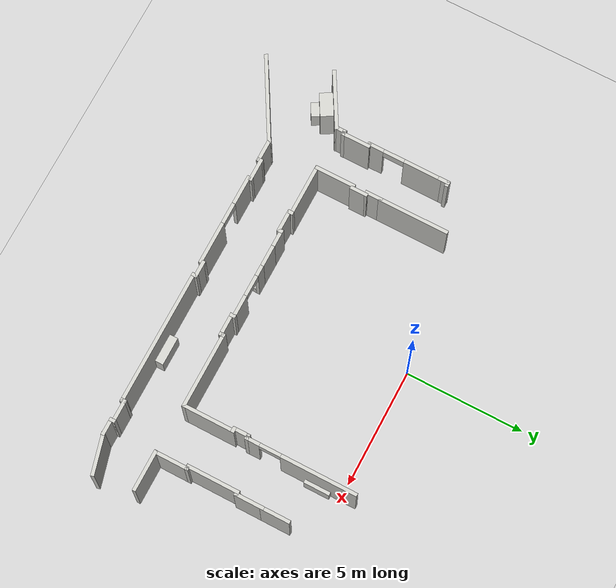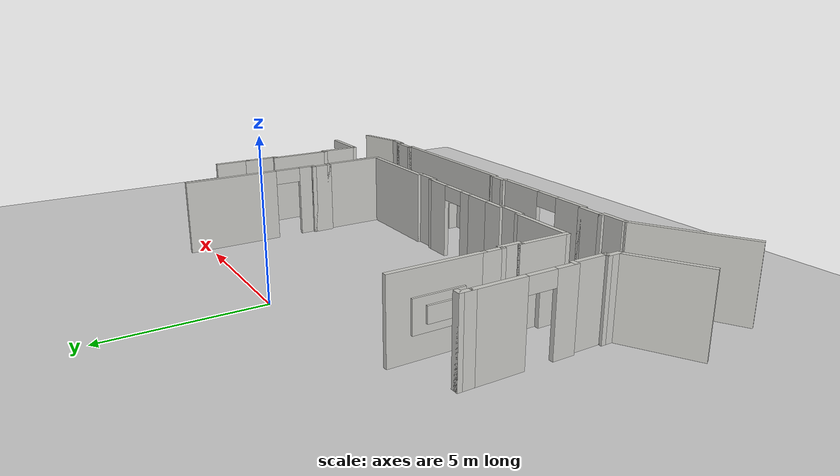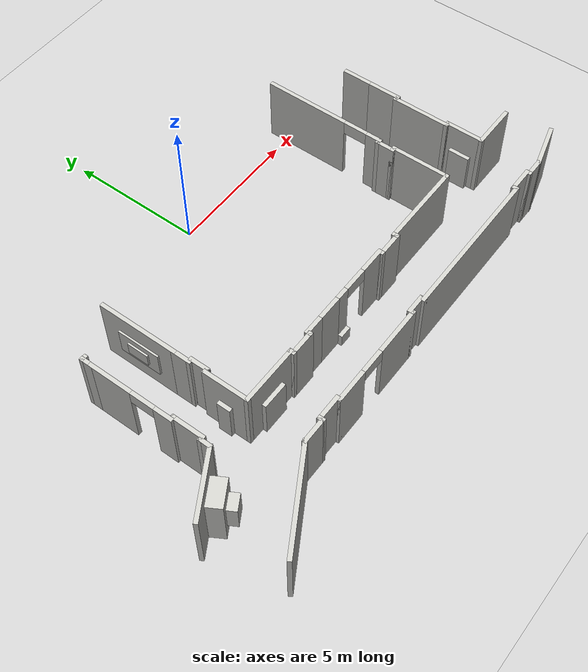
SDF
<sdf version="1.6">
 <world name="default">
  <model name="ground_plane">
   <static>1</static>
   <link name="link">
    <collision name="collision">
     <geometry><plane><normal>0 0 1</normal><size>100 100</size></plane></geometry>
     <surface><friction><ode><mu>100</mu><mu2>50</mu2></ode></friction></surface>
    </collision>
    <visual name="visual">
     <cast_shadows>0</cast_shadows>
     <geometry><plane><normal>0 0 1</normal><size>100 100</size></plane></geometry>
     <material>
      <script><uri>file://media/materials/scripts/gazebo.material</uri><name>Gazebo/Grey</name></script>
     </material>
    </visual>
   </link>
  </model>
  <model name="mcbryde5">
   <pose>0.000403 -0.034137 0 0 -0 0</pose>
   <link name="Wall_109">
    <collision name="Wall_109_Collision">
     <geometry><box><size>0.25 0.15 2.5</size></box></geometry>
     <pose>0 0 1.25 0 -0 0</pose>
    </collision>
    <visual name="Wall_109_Visual">
     <pose>0 0 1.25 0 -0 0</pose>
     <geometry><box><size>0.25 0.15 2.5</size></box></geometry>
     <material>
      <script><uri>file://media/materials/scripts/gazebo.material</uri><name>Gazebo/CeilingTiled</name></script>
      <ambient>1 1 1 1</ambient>
     </material>
    </visual>
    <pose>-6.89903 -1.86078 0 0 -0 3.14159</pose>
   </link>
   <link name="Wall_110">
    <collision name="Wall_110_Collision">
     <geometry><box><size>0.5 0.15 2.5</size></box></geometry>
     <pose>0 0 1.25 0 -0 0</pose>
    </collision>
    <visual name="Wall_110_Visual">
     <pose>0 0 1.25 0 -0 0</pose>
     <geometry><box><size>0.5 0.15 2.5</size></box></geometry>
     <material>
      <script><uri>file://media/materials/scripts/gazebo.material</uri><name>Gazebo/CeilingTiled</name></script>
      <ambient>1 1 1 1</ambient>
     </material>
    </visual>
    <pose>-6.94903 -2.03578 0 0 0 -1.5708</pose>
   </link>
   <link name="Wall_112">
    <pose>-6.94903 -3.76078 0 0 0 -1.5708</pose>
    <visual name="Wall_112_Visual_0">
     <pose>-0.803013 0 1.25 0 -0 0</pose>
     <geometry><box><size>1.64397 0.15 2.5</size></box></geometry>
     <material>
      <script><uri>file://media/materials/scripts/gazebo.material</uri><name>Gazebo/CeilingTiled</name></script>
      <ambient>1 1 1 1</ambient>
     </material>
    </visual>
    <collision name="Wall_112_Collision_0">
     <geometry><box><size>1.64397 0.15 2.5</size></box></geometry>
     <pose>-0.803013 0 1.25 0 -0 0</pose>
    </collision>
    <visual name="Wall_112_Visual_1">
     <pose>1.27199 0 1.25 0 -0 0</pose>
     <geometry><box><size>0.706025 0.15 2.5</size></box></geometry>
     <material>
      <script><uri>file://media/materials/scripts/gazebo.material</uri><name>Gazebo/CeilingTiled</name></script>
      <ambient>1 1 1 1</ambient>
     </material>
    </visual>
    <collision name="Wall_112_Collision_1">
     <geometry><box><size>0.706025 0.15 2.5</size></box></geometry>
     <pose>1.27199 0 1.25 0 -0 0</pose>
    </collision>
    <visual name="Wall_112_Visual_2">
     <pose>0.468975 0 2.25 0 -0 0</pose>
     <geometry><box><size>0.9 0.15 0.5</size></box></geometry>
     <material>
      <script><uri>file://media/materials/scripts/gazebo.material</uri><name>Gazebo/CeilingTiled</name></script>
      <ambient>1 1 1 1</ambient>
     </material>
    </visual>
    <collision name="Wall_112_Collision_2">
     <geometry><box><size>0.9 0.15 0.5</size></box></geometry>
     <pose>0.468975 0 2.25 0 -0 0</pose>
    </collision>
   </link>
   <link name="Wall_113">
    <collision name="Wall_113_Collision">
     <geometry><box><size>0.25 0.15 2.5</size></box></geometry>
     <pose>0 0 1.25 0 -0 0</pose>
    </collision>
    <visual name="Wall_113_Visual">
     <pose>0 0 1.25 0 -0 0</pose>
     <geometry><box><size>0.25 0.15 2.5</size></box></geometry>
     <material>
      <script><uri>file://media/materials/scripts/gazebo.material</uri><name>Gazebo/CeilingTiled</name></script>
      <ambient>1 1 1 1</ambient>
     </material>
    </visual>
    <pose>-6.89903 -5.31078 0 0 -0 0</pose>
   </link>
   <link name="Wall_114">
    <collision name="Wall_114_Collision">
     <geometry><box><size>1.25 0.15 2.5</size></box></geometry>
     <pose>0 0 1.25 0 -0 0</pose>
    </collision>
    <visual name="Wall_114_Visual">
     <pose>0 0 1.25 0 -0 0</pose>
     <geometry><box><size>1.25 0.15 2.5</size></box></geometry>
     <material>
      <script><uri>file://media/materials/scripts/gazebo.material</uri><name>Gazebo/CeilingTiled</name></script>
      <ambient>1 1 1 1</ambient>
     </material>
    </visual>
    <pose>-6.84903 -5.86078 0 0 0 -1.5708</pose>
   </link>
   <link name="Wall_115">
    <collision name="Wall_115_Collision">
     <geometry><box><size>0.25 0.15 2.5</size></box></geometry>
     <pose>0 0 1.25 0 -0 0</pose>
    </collision>
    <visual name="Wall_115_Visual">
     <pose>0 0 1.25 0 -0 0</pose>
     <geometry><box><size>0.25 0.15 2.5</size></box></geometry>
     <material>
      <script><uri>file://media/materials/scripts/gazebo.material</uri><name>Gazebo/CeilingTiled</name></script>
      <ambient>1 1 1 1</ambient>
     </material>
    </visual>
    <pose>-6.89903 -6.41078 0 0 -0 3.14159</pose>
   </link>
   <link name="Wall_116">
    <collision name="Wall_116_Collision">
     <geometry><box><size>0.5 0.15 2.5</size></box></geometry>
     <pose>0 0 1.25 0 -0 0</pose>
    </collision>
    <visual name="Wall_116_Visual">
     <pose>0 0 1.25 0 -0 0</pose>
     <geometry><box><size>0.5 0.15 2.5</size></box></geometry>
     <material>
      <script><uri>file://media/materials/scripts/gazebo.material</uri><name>Gazebo/CeilingTiled</name></script>
      <ambient>1 1 1 1</ambient>
     </material>
    </visual>
    <pose>-6.94903 -6.58578 0 0 0 -1.5708</pose>
   </link>
   <link name="Wall_117">
    <collision name="Wall_117_Collision_0">
     <geometry><box><size>2.5 0.15 2.5</size></box></geometry>
     <pose>0 0 1.25 0 -0 0</pose>
    </collision>
    <visual name="Wall_117_Visual_0">
     <pose>0 0 1.25 0 -0 0</pose>
     <geometry><box><size>2.5 0.15 2.5</size></box></geometry>
     <material>
      <script><uri>file://media/materials/scripts/gazebo.material</uri><name>Gazebo/CeilingTiled</name></script>
      <ambient>1 1 1 1</ambient>
     </material>
    </visual>
    <collision name="Wall_117_Collision_1">
     <geometry><box><size>1.0 0.55 2.0</size></box></geometry>
     <pose>0 0.35 1.0 0 -0 0</pose>
    </collision>
    <visual name="Wall_117_Visual_1">
     <pose>0 0.35 1.0 0 -0 0</pose>
     <geometry><box><size>1.0 0.55 2.0</size></box></geometry>
     <material>
      <script><uri>file://media/materials/scripts/gazebo.material</uri><name>Gazebo/CeilingTiled</name></script>
      <ambient>0.3 1 0.3 1</ambient>
     </material>
    </visual>
    <collision name="Wall_117_Collision_2">
     <geometry><box><size>0.6 0.35 1.0</size></box></geometry>
     <pose>0 0.8 1.0 0 -0 0</pose>
    </collision>
    <visual name="Wall_117_Visual_2">
     <pose>0 0.8 1.0 0 -0 0</pose>
     <geometry><box><size>0.6 0.35 1.0</size></box></geometry>
     <material>
      <script><uri>file://media/materials/scripts/gazebo.material</uri><name>Gazebo/CeilingTiled</name></script>
      <ambient>0.6 0.9 0.6 1</ambient>
     </material>
    </visual>
    <pose>-7.96661 -7.34828 0 0 0 -2.61799</pose>
   </link>
   <link name="Wall_119">
    <collision name="Wall_119_Collision">
     <geometry><box><size>3.75 0.15 2.5</size></box></geometry>
     <pose>0 0 1.25 0 -0 0</pose>
    </collision>
    <visual name="Wall_119_Visual">
     <pose>0 0 1.25 0 -0 0</pose>
     <geometry><box><size>3.75 0.15 2.5</size></box></geometry>
     <material>
      <script><uri>file://media/materials/scripts/gazebo.material</uri><name>Gazebo/CeilingTiled</name></script>
      <ambient>1 1 1 1</ambient>
     </material>
    </visual>
    <pose>-6.76357 -9.73795 0 0 -0 0.523599</pose>
   </link>
   <link name="Wall_120">
    <collision name="Wall_120_Collision">
     <geometry><box><size>1 0.15 2.5</size></box></geometry>
     <pose>0 0 1.25 0 -0 0</pose>
    </collision>
    <visual name="Wall_120_Visual">
     <pose>0 0 1.25 0 -0 0</pose>
     <geometry><box><size>1 0.15 2.5</size></box></geometry>
     <material>
      <script><uri>file://media/materials/scripts/gazebo.material</uri><name>Gazebo/CeilingTiled</name></script>
      <ambient>1 1 1 1</ambient>
     </material>
    </visual>
    <pose>-4.77972 -8.83795 0 0 -0 0</pose>
   </link>
   <link name="Wall_121">
    <collision name="Wall_121_Collision">
     <geometry><box><size>0.25 0.15 2.5</size></box></geometry>
     <pose>0 0 1.25 0 -0 0</pose>
    </collision>
    <visual name="Wall_121_Visual">
     <pose>0 0 1.25 0 -0 0</pose>
     <geometry><box><size>0.25 0.15 2.5</size></box></geometry>
     <material>
      <script><uri>file://media/materials/scripts/gazebo.material</uri><name>Gazebo/CeilingTiled</name></script>
      <ambient>1 1 1 1</ambient>
     </material>
    </visual>
    <pose>-4.35472 -8.78795 0 0 -0 1.5708</pose>
   </link>
   <link name="Wall_122">
    <collision name="Wall_122_Collision">
     <geometry><box><size>1 0.15 2.5</size></box></geometry>
     <pose>0 0 1.25 0 -0 0</pose>
    </collision>
    <visual name="Wall_122_Visual">
     <pose>0 0 1.25 0 -0 0</pose>
     <geometry><box><size>1 0.15 2.5</size></box></geometry>
     <material>
      <script><uri>file://media/materials/scripts/gazebo.material</uri><name>Gazebo/CeilingTiled</name></script>
      <ambient>1 1 1 1</ambient>
     </material>
    </visual>
    <pose>-3.92972 -8.73795 0 0 -0 0</pose>
   </link>
   <link name="Wall_123">
    <collision name="Wall_123_Collision">
     <geometry><box><size>0.25 0.15 2.5</size></box></geometry>
     <pose>0 0 1.25 0 -0 0</pose>
    </collision>
    <visual name="Wall_123_Visual">
     <pose>0 0 1.25 0 -0 0</pose>
     <geometry><box><size>0.25 0.15 2.5</size></box></geometry>
     <material>
      <script><uri>file://media/materials/scripts/gazebo.material</uri><name>Gazebo/CeilingTiled</name></script>
      <ambient>1 1 1 1</ambient>
     </material>
    </visual>
    <pose>-3.50472 -8.78795 0 0 0 -1.5708</pose>
   </link>
   <link name="Wall_124">
    <pose>-1.57972 -8.83795 0 0 -0 0</pose>
    <visual name="Wall_124_Visual_0">
     <pose>-1.36383 0 1.25 0 -0 0</pose>
     <geometry><box><size>1.27234 0.15 2.5</size></box></geometry>
     <material>
      <script><uri>file://media/materials/scripts/gazebo.material</uri><name>Gazebo/CeilingTiled</name></script>
      <ambient>1 1 1 1</ambient>
     </material>
    </visual>
    <collision name="Wall_124_Collision_0">
     <geometry><box><size>1.27234 0.15 2.5</size></box></geometry>
     <pose>-1.36383 0 1.25 0 -0 0</pose>
    </collision>
    <visual name="Wall_124_Visual_1">
     <pose>1.08617 0 1.25 0 -0 0</pose>
     <geometry><box><size>1.82766 0.15 2.5</size></box></geometry>
     <material>
      <script><uri>file://media/materials/scripts/gazebo.material</uri><name>Gazebo/CeilingTiled</name></script>
      <ambient>1 1 1 1</ambient>
     </material>
    </visual>
    <collision name="Wall_124_Collision_1">
     <geometry><box><size>1.82766 0.15 2.5</size></box></geometry>
     <pose>1.08617 0 1.25 0 -0 0</pose>
    </collision>
    <visual name="Wall_124_Visual_2">
     <pose>-0.277656 0 2.25 0 -0 0</pose>
     <geometry><box><size>0.9 0.15 0.5</size></box></geometry>
     <material>
      <script><uri>file://media/materials/scripts/gazebo.material</uri><name>Gazebo/CeilingTiled</name></script>
      <ambient>1 1 1 1</ambient>
     </material>
    </visual>
    <collision name="Wall_124_Collision_2">
     <geometry><box><size>0.9 0.15 0.5</size></box></geometry>
     <pose>-0.277656 0 2.25 0 -0 0</pose>
    </collision>
   </link>
   <link name="Wall_125">
    <collision name="Wall_125_Collision">
     <geometry><box><size>0.25 0.15 2.5</size></box></geometry>
     <pose>0 0 1.25 0 -0 0</pose>
    </collision>
    <visual name="Wall_125_Visual">
     <pose>0 0 1.25 0 -0 0</pose>
     <geometry><box><size>0.25 0.15 2.5</size></box></geometry>
     <material>
      <script><uri>file://media/materials/scripts/gazebo.material</uri><name>Gazebo/CeilingTiled</name></script>
      <ambient>1 1 1 1</ambient>
     </material>
    </visual>
    <pose>0.345276 -8.78795 0 0 -0 1.5708</pose>
   </link>
   <link name="Wall_126">
    <collision name="Wall_126_Collision">
     <geometry><box><size>0.75 0.15 2.5</size></box></geometry>
     <pose>0 0 1.25 0 -0 0</pose>
    </collision>
    <visual name="Wall_126_Visual">
     <pose>0 0 1.25 0 -0 0</pose>
     <geometry><box><size>0.75 0.15 2.5</size></box></geometry>
     <material>
      <script><uri>file://media/materials/scripts/gazebo.material</uri><name>Gazebo/CeilingTiled</name></script>
      <ambient>1 1 1 1</ambient>
     </material>
    </visual>
    <pose>0.645276 -8.73795 0 0 -0 0</pose>
   </link>
   <link name="Wall_127">
    <collision name="Wall_127_Collision">
     <geometry><box><size>0.25 0.15 2.5</size></box></geometry>
     <pose>0 0 1.25 0 -0 0</pose>
    </collision>
    <visual name="Wall_127_Visual">
     <pose>0 0 1.25 0 -0 0</pose>
     <geometry><box><size>0.25 0.15 2.5</size></box></geometry>
     <material>
      <script><uri>file://media/materials/scripts/gazebo.material</uri><name>Gazebo/CeilingTiled</name></script>
      <ambient>1 1 1 1</ambient>
     </material>
    </visual>
    <pose>0.945276 -8.78795 0 0 0 -1.5708</pose>
   </link>
   <link name="Wall_128">
    <collision name="Wall_128_Collision_0">
     <geometry><box><size>5.75 0.15 2.5</size></box></geometry>
     <pose>0 0 1.25 0 -0 0</pose>
    </collision>
    <visual name="Wall_128_Visual_0">
     <pose>0 0 1.25 0 -0 0</pose>
     <geometry><box><size>5.75 0.15 2.5</size></box></geometry>
     <material>
      <script><uri>file://media/materials/scripts/gazebo.material</uri><name>Gazebo/CeilingTiled</name></script>
      <ambient>1 1 1 1</ambient>
     </material>
    </visual>
    <collision name="Wall_128_Collision_1">
     <geometry><box><size>1.2 0.35 1.0</size></box></geometry>
     <pose>0 0.25 0.5 0 -0 0</pose>
    </collision>
    <visual name="Wall_128_Visual_1">
     <pose>0 0.25 0.5 0 -0 0</pose>
     <geometry><box><size>1.2 0.35 1.0</size></box></geometry>
     <material>
      <script><uri>file://media/materials/scripts/gazebo.material</uri><name>Gazebo/CeilingTiled</name></script>
      <ambient>0.4 0.4 1 1</ambient>
     </material>
    </visual>
    <pose>3.74528 -8.83795 0 0 -0 0</pose>
   </link>
   <link name="Wall_129">
    <collision name="Wall_129_Collision">
     <geometry><box><size>0.25 0.15 2.5</size></box></geometry>
     <pose>0 0 1.25 0 -0 0</pose>
    </collision>
    <visual name="Wall_129_Visual">
     <pose>0 0 1.25 0 -0 0</pose>
     <geometry><box><size>0.25 0.15 2.5</size></box></geometry>
     <material>
      <script><uri>file://media/materials/scripts/gazebo.material</uri><name>Gazebo/CeilingTiled</name></script>
      <ambient>1 1 1 1</ambient>
     </material>
    </visual>
    <pose>6.54528 -8.78795 0 0 -0 1.5708</pose>
   </link>
   <link name="Wall_130">
    <collision name="Wall_130_Collision">
     <geometry><box><size>1 0.15 2.5</size></box></geometry>
     <pose>0 0 1.25 0 -0 0</pose>
    </collision>
    <visual name="Wall_130_Visual">
     <pose>0 0 1.25 0 -0 0</pose>
     <geometry><box><size>1 0.15 2.5</size></box></geometry>
     <material>
      <script><uri>file://media/materials/scripts/gazebo.material</uri><name>Gazebo/CeilingTiled</name></script>
      <ambient>1 1 1 1</ambient>
     </material>
    </visual>
    <pose>6.97028 -8.73795 0 0 -0 0</pose>
   </link>
   <link name="Wall_131">
    <collision name="Wall_131_Collision">
     <geometry><box><size>0.25 0.15 2.5</size></box></geometry>
     <pose>0 0 1.25 0 -0 0</pose>
    </collision>
    <visual name="Wall_131_Visual">
     <pose>0 0 1.25 0 -0 0</pose>
     <geometry><box><size>0.25 0.15 2.5</size></box></geometry>
     <material>
      <script><uri>file://media/materials/scripts/gazebo.material</uri><name>Gazebo/CeilingTiled</name></script>
      <ambient>1 1 1 1</ambient>
     </material>
    </visual>
    <pose>7.39528 -8.78795 0 0 0 -1.5708</pose>
   </link>
   <link name="Wall_132">
    <collision name="Wall_132_Collision">
     <geometry><box><size>0.75 0.15 2.5</size></box></geometry>
     <pose>0 0 1.25 0 -0 0</pose>
    </collision>
    <visual name="Wall_132_Visual">
     <pose>0 0 1.25 0 -0 0</pose>
     <geometry><box><size>0.75 0.15 2.5</size></box></geometry>
     <material>
      <script><uri>file://media/materials/scripts/gazebo.material</uri><name>Gazebo/CeilingTiled</name></script>
      <ambient>1 1 1 1</ambient>
     </material>
    </visual>
    <pose>7.69528 -8.83795 0 0 -0 0</pose>
   </link>
   <link name="Wall_133">
    <collision name="Wall_133_Collision">
     <geometry><box><size>1.75 0.15 2.5</size></box></geometry>
     <pose>0 0 1.25 0 -0 0</pose>
    </collision>
    <visual name="Wall_133_Visual">
     <pose>0 0 1.25 0 -0 0</pose>
     <geometry><box><size>1.75 0.15 2.5</size></box></geometry>
     <material>
      <script><uri>file://media/materials/scripts/gazebo.material</uri><name>Gazebo/CeilingTiled</name></script>
      <ambient>1 1 1 1</ambient>
     </material>
    </visual>
    <pose>8.76802 -8.6309 0 0 -0 0.261799</pose>
   </link>
   <link name="Wall_136">
    <collision name="Wall_136_Collision">
     <geometry><box><size>1.75 0.15 2.5</size></box></geometry>
     <pose>0 0 1.25 0 -0 0</pose>
    </collision>
    <visual name="Wall_136_Visual">
     <pose>0 0 1.25 0 -0 0</pose>
     <geometry><box><size>1.75 0.15 2.5</size></box></geometry>
     <material>
      <script><uri>file://media/materials/scripts/gazebo.material</uri><name>Gazebo/CeilingTiled</name></script>
      <ambient>1 1 1 1</ambient>
     </material>
    </visual>
    <pose>8.50453 -6.75972 0 0 -0 3.14159</pose>
   </link>
   <link name="Wall_137">
    <collision name="Wall_137_Collision_0">
     <geometry><box><size>1.5 0.15 2.5</size></box></geometry>
     <pose>0 0 1.25 0 -0 0</pose>
    </collision>
    <visual name="Wall_137_Visual_0">
     <pose>0 0 1.25 0 -0 0</pose>
     <geometry><box><size>1.5 0.15 2.5</size></box></geometry>
     <material>
      <script><uri>file://media/materials/scripts/gazebo.material</uri><name>Gazebo/CeilingTiled</name></script>
      <ambient>1 1 1 1</ambient>
     </material>
    </visual>
    <collision name="Wall_137_Collision_1">
     <geometry><box><size>0.8 0.15 1.5</size></box></geometry>
     <pose>0 0.15 0.75 0 -0 0</pose>
    </collision>
    <visual name="Wall_137_Visual_1">
     <pose>0 0.15 0.75 0 -0 0</pose>
     <geometry><box><size>0.8 0.15 1.5</size></box></geometry>
     <material>
      <script><uri>file://media/materials/scripts/gazebo.material</uri><name>Gazebo/CeilingTiled</name></script>
      <ambient>1 0.6 1 1</ambient>
     </material>
    </visual>
    <pose>7.70453 -6.08472 0 0 -0 1.5708</pose>
   </link>
   <link name="Wall_138">
    <collision name="Wall_138_Collision">
     <geometry><box><size>0.25 0.15 2.5</size></box></geometry>
     <pose>0 0 1.25 0 -0 0</pose>
    </collision>
    <visual name="Wall_138_Visual">
     <pose>0 0 1.25 0 -0 0</pose>
     <geometry><box><size>0.25 0.15 2.5</size></box></geometry>
     <material>
      <script><uri>file://media/materials/scripts/gazebo.material</uri><name>Gazebo/CeilingTiled</name></script>
      <ambient>1 1 1 1</ambient>
     </material>
    </visual>
    <pose>7.65453 -5.40972 0 0 -0 3.14159</pose>
   </link>
   <link name="Wall_139">
    <collision name="Wall_139_Collision">
     <geometry><box><size>2.25 0.15 2.5</size></box></geometry>
     <pose>0 0 1.25 0 -0 0</pose>
    </collision>
    <visual name="Wall_139_Visual">
     <pose>0 0 1.25 0 -0 0</pose>
     <geometry><box><size>2.25 0.15 2.5</size></box></geometry>
     <material>
      <script><uri>file://media/materials/scripts/gazebo.material</uri><name>Gazebo/CeilingTiled</name></script>
      <ambient>1 1 1 1</ambient>
     </material>
    </visual>
    <pose>7.60453 -4.35972 0 0 -0 1.5708</pose>
   </link>
   <link name="Wall_140">
    <collision name="Wall_140_Collision">
     <geometry><box><size>0.25 0.15 2.5</size></box></geometry>
     <pose>0 0 1.25 0 -0 0</pose>
    </collision>
    <visual name="Wall_140_Visual">
     <pose>0 0 1.25 0 -0 0</pose>
     <geometry><box><size>0.25 0.15 2.5</size></box></geometry>
     <material>
      <script><uri>file://media/materials/scripts/gazebo.material</uri><name>Gazebo/CeilingTiled</name></script>
      <ambient>1 1 1 1</ambient>
     </material>
    </visual>
    <pose>7.65453 -3.30972 0 0 -0 0</pose>
   </link>
   <link name="Wall_141">
    <collision name="Wall_141_Collision">
     <geometry><box><size>1.25 0.15 2.5</size></box></geometry>
     <pose>0 0 1.25 0 -0 0</pose>
    </collision>
    <visual name="Wall_141_Visual">
     <pose>0 0 1.25 0 -0 0</pose>
     <geometry><box><size>1.25 0.15 2.5</size></box></geometry>
     <material>
      <script><uri>file://media/materials/scripts/gazebo.material</uri><name>Gazebo/CeilingTiled</name></script>
      <ambient>1 1 1 1</ambient>
     </material>
    </visual>
    <pose>7.70453 -2.75972 0 0 -0 1.5708</pose>
   </link>
   <link name="Wall_143">
    <collision name="Wall_143_Collision">
     <geometry><box><size>1.25 0.15 2.5</size></box></geometry>
     <pose>0 0 1.25 0 -0 0</pose>
    </collision>
    <visual name="Wall_143_Visual">
     <pose>0 0 1.25 0 -0 0</pose>
     <geometry><box><size>1.25 0.15 2.5</size></box></geometry>
     <material>
      <script><uri>file://media/materials/scripts/gazebo.material</uri><name>Gazebo/CeilingTiled</name></script>
      <ambient>1 1 1 1</ambient>
     </material>
    </visual>
    <pose>7.70453 -1.65972 0 0 -0 1.5708</pose>
   </link>
   <link name="Wall_53">
    <pose>5.63134 -1.67329 0 0 0 -1.5708</pose>
    <visual name="Wall_53_Visual_0">
     <pose>-0.759374 0 1.25 0 -0 0</pose>
     <geometry><box><size>3.23125 0.15 2.5</size></box></geometry>
     <material>
      <script><uri>file://media/materials/scripts/gazebo.material</uri><name>Gazebo/CeilingTiled</name></script>
      <ambient>1 1 1 1</ambient>
     </material>
    </visual>
    <collision name="Wall_53_Collision_0">
     <geometry><box><size>3.23125 0.15 2.5</size></box></geometry>
     <pose>-0.759374 0 1.25 0 -0 0</pose>
    </collision>
    <visual name="Wall_53_Visual_1">
     <pose>2.06563 0 1.25 0 -0 0</pose>
     <geometry><box><size>0.618748 0.15 2.5</size></box></geometry>
     <material>
      <script><uri>file://media/materials/scripts/gazebo.material</uri><name>Gazebo/CeilingTiled</name></script>
      <ambient>1 1 1 1</ambient>
     </material>
    </visual>
    <collision name="Wall_53_Collision_1">
     <geometry><box><size>0.618748 0.15 2.5</size></box></geometry>
     <pose>2.06563 0 1.25 0 -0 0</pose>
    </collision>
    <visual name="Wall_53_Visual_2">
     <pose>1.30625 0 2.25 0 -0 0</pose>
     <geometry><box><size>0.9 0.15 0.5</size></box></geometry>
     <material>
      <script><uri>file://media/materials/scripts/gazebo.material</uri><name>Gazebo/CeilingTiled</name></script>
      <ambient>1 1 1 1</ambient>
     </material>
    </visual>
    <collision name="Wall_53_Collision_2">
     <geometry><box><size>0.9 0.15 0.5</size></box></geometry>
     <pose>1.30625 0 2.25 0 -0 0</pose>
    </collision>
    <visual name="Wall_53_Visual_3">
     <pose>-0.759374 0.15 0.4 0 -0 0</pose>
     <geometry><box><size>1.1 0.15 0.8</size></box></geometry>
     <material>
      <script><uri>file://media/materials/scripts/gazebo.material</uri><name>Gazebo/CeilingTiled</name></script>
      <ambient>0 1 1 1</ambient>
     </material>
    </visual>
    <collision name="Wall_53_Collision_3">
     <geometry><box><size>1.1 0.15 0.8</size></box></geometry>
     <pose>-0.759374 0.15 0.4 0 -0 0</pose>
    </collision>
   </link>
   <link name="Wall_62">
    <collision name="Wall_62_Collision">
     <geometry><box><size>0.25 0.15 2.5</size></box></geometry>
     <pose>0 0 1.25 0 -0 0</pose>
    </collision>
    <visual name="Wall_62_Visual">
     <pose>0 0 1.25 0 -0 0</pose>
     <geometry><box><size>0.25 0.15 2.5</size></box></geometry>
     <material>
      <script><uri>file://media/materials/scripts/gazebo.material</uri><name>Gazebo/CeilingTiled</name></script>
      <ambient>1 1 1 1</ambient>
     </material>
    </visual>
    <pose>5.58134 -3.97329 0 0 -0 3.14159</pose>
   </link>
   <link name="Wall_63">
    <collision name="Wall_63_Collision">
     <geometry><box><size>0.75 0.15 2.5</size></box></geometry>
     <pose>0 0 1.25 0 -0 0</pose>
    </collision>
    <visual name="Wall_63_Visual">
     <pose>0 0 1.25 0 -0 0</pose>
     <geometry><box><size>0.75 0.15 2.5</size></box></geometry>
     <material>
      <script><uri>file://media/materials/scripts/gazebo.material</uri><name>Gazebo/CeilingTiled</name></script>
      <ambient>1 1 1 1</ambient>
     </material>
    </visual>
    <pose>5.53134 -4.27329 0 0 0 -1.5708</pose>
   </link>
   <link name="Wall_64">
    <collision name="Wall_64_Collision">
     <geometry><box><size>0.25 0.15 2.5</size></box></geometry>
     <pose>0 0 1.25 0 -0 0</pose>
    </collision>
    <visual name="Wall_64_Visual">
     <pose>0 0 1.25 0 -0 0</pose>
     <geometry><box><size>0.25 0.15 2.5</size></box></geometry>
     <material>
      <script><uri>file://media/materials/scripts/gazebo.material</uri><name>Gazebo/CeilingTiled</name></script>
      <ambient>1 1 1 1</ambient>
     </material>
    </visual>
    <pose>5.58134 -4.57329 0 0 -0 0</pose>
   </link>
   <link name="Wall_65">
    <collision name="Wall_65_Collision">
     <geometry><box><size>2.25 0.15 2.5</size></box></geometry>
     <pose>0 0 1.25 0 -0 0</pose>
    </collision>
    <visual name="Wall_65_Visual">
     <pose>0 0 1.25 0 -0 0</pose>
     <geometry><box><size>2.25 0.15 2.5</size></box></geometry>
     <material>
      <script><uri>file://media/materials/scripts/gazebo.material</uri><name>Gazebo/CeilingTiled</name></script>
      <ambient>1 1 1 1</ambient>
     </material>
    </visual>
    <pose>5.63134 -5.62329 0 0 0 -1.5708</pose>
   </link>
   <link name="Wall_66">
    <collision name="Wall_66_Collision">
     <geometry><box><size>3.25 0.15 2.5</size></box></geometry>
     <pose>0 0 1.25 0 -0 0</pose>
    </collision>
    <visual name="Wall_66_Visual">
     <pose>0 0 1.25 0 -0 0</pose>
     <geometry><box><size>3.25 0.15 2.5</size></box></geometry>
     <material>
      <script><uri>file://media/materials/scripts/gazebo.material</uri><name>Gazebo/CeilingTiled</name></script>
      <ambient>1 1 1 1</ambient>
     </material>
    </visual>
    <pose>4.08134 -6.67329 0 0 -0 3.14159</pose>
   </link>
   <link name="Wall_67">
    <collision name="Wall_67_Collision">
     <geometry><box><size>0.25 0.15 2.5</size></box></geometry>
     <pose>0 0 1.25 0 -0 0</pose>
    </collision>
    <visual name="Wall_67_Visual">
     <pose>0 0 1.25 0 -0 0</pose>
     <geometry><box><size>0.25 0.15 2.5</size></box></geometry>
     <material>
      <script><uri>file://media/materials/scripts/gazebo.material</uri><name>Gazebo/CeilingTiled</name></script>
      <ambient>1 1 1 1</ambient>
     </material>
    </visual>
    <pose>2.53134 -6.72329 0 0 0 -1.5708</pose>
   </link>
   <link name="Wall_68">
    <collision name="Wall_68_Collision">
     <geometry><box><size>1 0.15 2.5</size></box></geometry>
     <pose>0 0 1.25 0 -0 0</pose>
    </collision>
    <visual name="Wall_68_Visual">
     <pose>0 0 1.25 0 -0 0</pose>
     <geometry><box><size>1 0.15 2.5</size></box></geometry>
     <material>
      <script><uri>file://media/materials/scripts/gazebo.material</uri><name>Gazebo/CeilingTiled</name></script>
      <ambient>1 1 1 1</ambient>
     </material>
    </visual>
    <pose>2.10634 -6.77329 0 0 -0 3.14159</pose>
   </link>
   <link name="Wall_69">
    <collision name="Wall_69_Collision">
     <geometry><box><size>0.25 0.15 2.5</size></box></geometry>
     <pose>0 0 1.25 0 -0 0</pose>
    </collision>
    <visual name="Wall_69_Visual">
     <pose>0 0 1.25 0 -0 0</pose>
     <geometry><box><size>0.25 0.15 2.5</size></box></geometry>
     <material>
      <script><uri>file://media/materials/scripts/gazebo.material</uri><name>Gazebo/CeilingTiled</name></script>
      <ambient>1 1 1 1</ambient>
     </material>
    </visual>
    <pose>1.68134 -6.72329 0 0 -0 1.5708</pose>
   </link>
   <link name="Wall_70">
    <pose>-0.243662 -6.67329 0 0 -0 3.14159</pose>
    <visual name="Wall_70_Visual_0">
     <pose>-1.49906 0 1.25 0 -0 0</pose>
     <geometry><box><size>1.00188 0.15 2.5</size></box></geometry>
     <material>
      <script><uri>file://media/materials/scripts/gazebo.material</uri><name>Gazebo/CeilingTiled</name></script>
      <ambient>1 1 1 1</ambient>
     </material>
    </visual>
    <collision name="Wall_70_Collision_0">
     <geometry><box><size>1.00188 0.15 2.5</size></box></geometry>
     <pose>-1.49906 0 1.25 0 -0 0</pose>
    </collision>
    <visual name="Wall_70_Visual_1">
     <pose>0.130183 0 1.25 0 -0 0</pose>
     <geometry><box><size>0.45661 0.15 2.5</size></box></geometry>
     <material>
      <script><uri>file://media/materials/scripts/gazebo.material</uri><name>Gazebo/CeilingTiled</name></script>
      <ambient>1 1 1 1</ambient>
     </material>
    </visual>
    <collision name="Wall_70_Collision_1">
     <geometry><box><size>0.45661 0.15 2.5</size></box></geometry>
     <pose>0.130183 0 1.25 0 -0 0</pose>
    </collision>
    <visual name="Wall_70_Visual_2">
     <pose>1.62924 0 1.25 0 -0 0</pose>
     <geometry><box><size>0.741512 0.15 2.5</size></box></geometry>
     <material>
      <script><uri>file://media/materials/scripts/gazebo.material</uri><name>Gazebo/CeilingTiled</name></script>
      <ambient>1 1 1 1</ambient>
     </material>
    </visual>
    <collision name="Wall_70_Collision_2">
     <geometry><box><size>0.741512 0.15 2.5</size></box></geometry>
     <pose>1.62924 0 1.25 0 -0 0</pose>
    </collision>
    <visual name="Wall_70_Visual_3">
     <pose>-0.548122 0 2.25 0 -0 0</pose>
     <geometry><box><size>0.9 0.15 0.5</size></box></geometry>
     <material>
      <script><uri>file://media/materials/scripts/gazebo.material</uri><name>Gazebo/CeilingTiled</name></script>
      <ambient>1 1 1 1</ambient>
     </material>
    </visual>
    <collision name="Wall_70_Collision_3">
     <geometry><box><size>0.9 0.15 0.5</size></box></geometry>
     <pose>-0.548122 0 2.25 0 -0 0</pose>
    </collision>
    <visual name="Wall_70_Visual_4">
     <pose>0.808488 0 1.25 0 -0 0</pose>
     <geometry><box><size>0.9 0.15 2.5</size></box></geometry>
     <material>
      <script><uri>file://media/materials/scripts/gazebo.material</uri><name>Gazebo/CeilingTiled</name></script>
      <ambient>1 1 1 1</ambient>
     </material>
    </visual>
    <collision name="Wall_70_Collision_4">
     <geometry><box><size>0.9 0.15 2.5</size></box></geometry>
     <pose>0.808488 0 1.25 0 -0 0</pose>
    </collision>
    <visual name="Wall_70_Visual_5">
     <pose>0.130183 0.15 0.25 0 -0 0</pose>
     <geometry><box><size>0.45661 0.15 0.5</size></box></geometry>
     <material>
      <script><uri>file://media/materials/scripts/gazebo.material</uri><name>Gazebo/CeilingTiled</name></script>
      <ambient>0 0 0 1</ambient>
     </material>
    </visual>
    <collision name="Wall_70_Collision_5">
     <geometry><box><size>0.45661 0.15 0.5</size></box></geometry>
     <pose>0.130183 0.15 0.25 0 -0 0</pose>
    </collision>
   </link>
   <link name="Wall_71">
    <collision name="Wall_71_Collision">
     <geometry><box><size>0.25 0.15 2.5</size></box></geometry>
     <pose>0 0 1.25 0 -0 0</pose>
    </collision>
    <visual name="Wall_71_Visual">
     <pose>0 0 1.25 0 -0 0</pose>
     <geometry><box><size>0.25 0.15 2.5</size></box></geometry>
     <material>
      <script><uri>file://media/materials/scripts/gazebo.material</uri><name>Gazebo/CeilingTiled</name></script>
      <ambient>1 1 1 1</ambient>
     </material>
    </visual>
    <pose>-2.16866 -6.72329 0 0 0 -1.5708</pose>
   </link>
   <link name="Wall_72">
    <collision name="Wall_72_Collision">
     <geometry><box><size>1 0.15 2.5</size></box></geometry>
     <pose>0 0 1.25 0 -0 0</pose>
    </collision>
    <visual name="Wall_72_Visual">
     <pose>0 0 1.25 0 -0 0</pose>
     <geometry><box><size>1 0.15 2.5</size></box></geometry>
     <material>
      <script><uri>file://media/materials/scripts/gazebo.material</uri><name>Gazebo/CeilingTiled</name></script>
      <ambient>1 1 1 1</ambient>
     </material>
    </visual>
    <pose>-2.59366 -6.77329 0 0 -0 3.14159</pose>
   </link>
   <link name="Wall_73">
    <collision name="Wall_73_Collision">
     <geometry><box><size>0.25 0.15 2.5</size></box></geometry>
     <pose>0 0 1.25 0 -0 0</pose>
    </collision>
    <visual name="Wall_73_Visual">
     <pose>0 0 1.25 0 -0 0</pose>
     <geometry><box><size>0.25 0.15 2.5</size></box></geometry>
     <material>
      <script><uri>file://media/materials/scripts/gazebo.material</uri><name>Gazebo/CeilingTiled</name></script>
      <ambient>1 1 1 1</ambient>
     </material>
    </visual>
    <pose>-3.01866 -6.72329 0 0 -0 1.5708</pose>
   </link>
   <link name="Wall_74">
    <collision name="Wall_74_Collision_0">
     <geometry><box><size>2.25 0.15 2.5</size></box></geometry>
     <pose>0 0 1.25 0 -0 0</pose>
    </collision>
    <visual name="Wall_74_Visual_0">
     <pose>0 0 1.25 0 -0 0</pose>
     <geometry><box><size>2.25 0.15 2.5</size></box></geometry>
     <material>
      <script><uri>file://media/materials/scripts/gazebo.material</uri><name>Gazebo/CeilingTiled</name></script>
      <ambient>1 1 1 1</ambient>
     </material>
    </visual>
    <collision name="Wall_74_Collision_1">
     <geometry><box><size>1.0 0.15 1.5</size></box></geometry>
     <pose>0 0.15 0.75 0 -0 0</pose>
    </collision>
    <visual name="Wall_74_Visual_1">
     <pose>0 0.15 0.75 0 -0 0</pose>
     <geometry><box><size>1.0 0.15 1.5</size></box></geometry>
     <material>
      <script><uri>file://media/materials/scripts/gazebo.material</uri><name>Gazebo/CeilingTiled</name></script>
      <ambient>0.6 1 0.6 1</ambient>
     </material>
    </visual>
    <pose>-4.06866 -6.67329 0 0 -0 3.14159</pose>
   </link>
   <link name="Wall_75">
    <collision name="Wall_75_Collision_0">
     <geometry><box><size>1.75 0.15 2.5</size></box></geometry>
     <pose>0 0 1.25 0 -0 0</pose>
    </collision>
    <visual name="Wall_75_Visual_0">
     <pose>0 0 1.25 0 -0 0</pose>
     <geometry><box><size>1.75 0.15 2.5</size></box></geometry>
     <material>
      <script><uri>file://media/materials/scripts/gazebo.material</uri><name>Gazebo/CeilingTiled</name></script>
      <ambient>1 1 1 1</ambient>
     </material>
    </visual>
    <collision name="Wall_75_Collision_1">
     <geometry><box><size>0.5 0.15 1.5</size></box></geometry>
     <pose>0 0.15 0.75 0 -0 0</pose>
    </collision>
    <visual name="Wall_75_Visual_1">
     <pose>0 0.15 0.75 0 -0 0</pose>
     <geometry><box><size>0.5 0.15 1.5</size></box></geometry>
     <material>
      <script><uri>file://media/materials/scripts/gazebo.material</uri><name>Gazebo/CeilingTiled</name></script>
      <ambient>0 1 1 1</ambient>
     </material>
    </visual>
    <pose>-5.11866 -5.87329 0 0 -0 1.5708</pose>
   </link>
   <link name="Wall_76">
    <collision name="Wall_76_Collision">
     <geometry><box><size>0.25 0.15 2.5</size></box></geometry>
     <pose>0 0 1.25 0 -0 0</pose>
    </collision>
    <visual name="Wall_76_Visual">
     <pose>0 0 1.25 0 -0 0</pose>
     <geometry><box><size>0.25 0.15 2.5</size></box></geometry>
     <material>
      <script><uri>file://media/materials/scripts/gazebo.material</uri><name>Gazebo/CeilingTiled</name></script>
      <ambient>1 1 1 1</ambient>
     </material>
    </visual>
    <pose>-5.06866 -5.07329 0 0 -0 0</pose>
   </link>
   <link name="Wall_77">
    <collision name="Wall_77_Collision">
     <geometry><box><size>0.75 0.15 2.5</size></box></geometry>
     <pose>0 0 1.25 0 -0 0</pose>
    </collision>
    <visual name="Wall_77_Visual">
     <pose>0 0 1.25 0 -0 0</pose>
     <geometry><box><size>0.75 0.15 2.5</size></box></geometry>
     <material>
      <script><uri>file://media/materials/scripts/gazebo.material</uri><name>Gazebo/CeilingTiled</name></script>
      <ambient>1 1 1 1</ambient>
     </material>
    </visual>
    <pose>-5.01866 -4.77329 0 0 -0 1.5708</pose>
   </link>
   <link name="Wall_78">
    <collision name="Wall_78_Collision">
     <geometry><box><size>0.25 0.15 2.5</size></box></geometry>
     <pose>0 0 1.25 0 -0 0</pose>
    </collision>
    <visual name="Wall_78_Visual">
     <pose>0 0 1.25 0 -0 0</pose>
     <geometry><box><size>0.25 0.15 2.5</size></box></geometry>
     <material>
      <script><uri>file://media/materials/scripts/gazebo.material</uri><name>Gazebo/CeilingTiled</name></script>
      <ambient>1 1 1 1</ambient>
     </material>
    </visual>
    <pose>-5.06866 -4.47329 0 0 -0 3.14159</pose>
   </link>
   <link name="Wall_79">
    <collision name="Wall_79_Collision">
     <geometry><box><size>0.75 0.15 2.5</size></box></geometry>
     <pose>0 0 1.25 0 -0 0</pose>
    </collision>
    <visual name="Wall_79_Visual">
     <pose>0 0 1.25 0 -0 0</pose>
     <geometry><box><size>0.75 0.15 2.5</size></box></geometry>
     <material>
      <script><uri>file://media/materials/scripts/gazebo.material</uri><name>Gazebo/CeilingTiled</name></script>
      <ambient>1 1 1 1</ambient>
     </material>
    </visual>
    <pose>-5.11866 -4.17329 0 0 -0 1.5708</pose>
   </link>
   <link name="Wall_81">
    <collision name="Wall_81_Collision_0">
     <geometry><box><size>3 0.15 2.5</size></box></geometry>
     <pose>0 0 1.25 0 -0 0</pose>
    </collision>
    <visual name="Wall_81_Visual_0">
     <pose>0 0 1.25 0 -0 0</pose>
     <geometry><box><size>3 0.15 2.5</size></box></geometry>
     <material>
      <script><uri>file://media/materials/scripts/gazebo.material</uri><name>Gazebo/CeilingTiled</name></script>
      <ambient>1 1 1 1</ambient>
     </material>
    </visual>
    <collision name="Wall_81_Collision_1">
     <geometry><box><size>1.6 0.07 1.0</size></box></geometry>
     <pose>0 0.11 1.25 0 -0 0</pose>
    </collision>
    <visual name="Wall_81_Visual_1">
     <pose>0 0.11 1.25 0 -0 0</pose>
     <geometry><box><size>1.6 0.07 1.0</size></box></geometry>
     <material>
      <script><uri>file://media/materials/scripts/gazebo.material</uri><name>Gazebo/CeilingTiled</name></script>
      <ambient>1 1 0.7 1</ambient>
     </material>
    </visual>
    <collision name="Wall_81_Collision_2">
     <geometry><box><size>0.8 0.07 0.5</size></box></geometry>
     <pose>0 0.18 1.25 0 -0 0</pose>
    </collision>
    <visual name="Wall_81_Visual_2">
     <pose>0 0.18 1.25 0 -0 0</pose>
     <geometry><box><size>0.8 0.07 0.5</size></box></geometry>
     <material>
      <script><uri>file://media/materials/scripts/gazebo.material</uri><name>Gazebo/CeilingTiled</name></script>
      <ambient>1 0.7 0.7 1</ambient>
     </material>
    </visual>
    <pose>-5.11866 -2.44829 0 0 -0 1.5708</pose>
   </link>
   <static>1</static>
  </model>
 </world>
</sdf>
